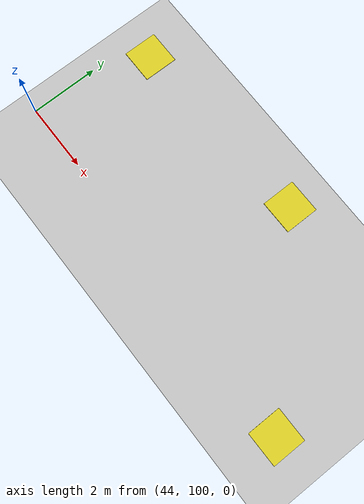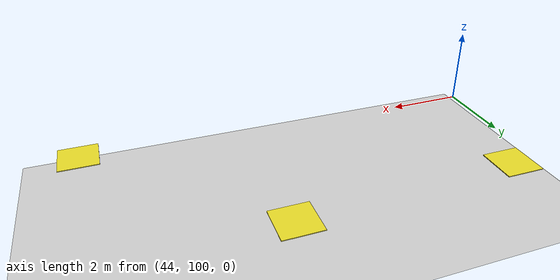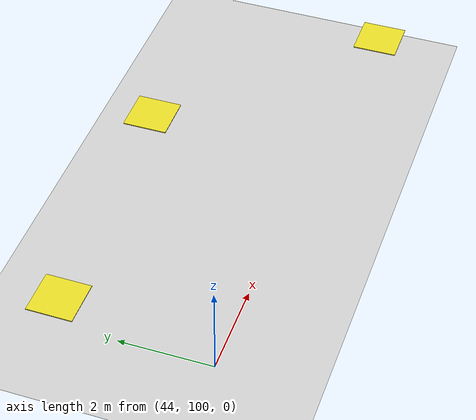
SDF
<sdf version="1.6">
 <world name="default">
  <model name="ground_plane">
   <pose>0 0 -1 0 -0 0</pose>
   <static>1</static>
   <link name="link">
    <collision name="collision">
     <geometry><plane><normal>0 0 1</normal><size>100 100</size></plane></geometry>
     <surface><friction><ode><mu>100</mu><mu2>50</mu2></ode></friction></surface>
    </collision>
    <visual name="visual">
     <cast_shadows>0</cast_shadows>
     <geometry><plane><normal>0 0 1</normal><size>100 100</size></plane></geometry>
     <material>
      <script><uri>file://media/materials/scripts/gazebo.material</uri><name>Gazebo/Grey</name></script>
     </material>
    </visual>
   </link>
  </model>
  <model name="YAC_airport_clone_3">
   <link name="my_box">
    <inertial>
     <mass>1</mass>
     <inertia><ixx>1</ixx><ixy>0</ixy><ixz>0</ixz><iyy>100</iyy><iyz>0</iyz><izz>1</izz></inertia>
    </inertial>
    <visual name="my_box_visual">
     <pose>0 0 1 0 -0 0</pose>
     <geometry><box><size>1 1 0.02</size></box></geometry>
     <material>
      <script><name>Gazebo/Yellow</name><uri>file://media/materials/scripts/gazebo.material</uri></script>
      <ambient>1 1 0 1</ambient>
      <diffuse>1 1 0 1</diffuse>
      <specular>0 0 0 0</specular>
      <emissive>0 0 0 1</emissive>
      <shader type="vertex"><normal_map>__default__</normal_map></shader>
     </material>
    </visual>
    <collision name="my_box_collision">
     <pose>0 0 1 0 -0 0</pose>
     <geometry><box><size>1 1 0.02</size></box></geometry>
     <surface>
      <friction>
       <ode><mu>1</mu><mu2>1</mu2><fdir1>0 0 0</fdir1><slip1>0</slip1><slip2>0</slip2></ode>
       <torsional>
        <coefficient>1</coefficient>
        <patch_radius>0</patch_radius>
        <surface_radius>0</surface_radius>
        <use_patch_radius>1</use_patch_radius>
        <ode><slip>0</slip></ode>
       </torsional>
      </friction>
      <bounce><restitution_coefficient>0</restitution_coefficient><threshold>1e+06</threshold></bounce>
      <contact>
       <collide_without_contact>0</collide_without_contact>
       <collide_without_contact_bitmask>1</collide_without_contact_bitmask>
       <collide_bitmask>1</collide_bitmask>
       <ode>
        <soft_cfm>0</soft_cfm>
        <soft_erp>0.2</soft_erp>
        <kp>1e+13</kp>
        <kd>1</kd>
        <max_vel>0.01</max_vel>
        <min_depth>0</min_depth>
       </ode>
       <bullet>
        <split_impulse>1</split_impulse>
        <split_impulse_penetration_threshold>-0.01</split_impulse_penetration_threshold>
        <soft_cfm>0</soft_cfm>
        <soft_erp>0.2</soft_erp>
        <kp>1e+13</kp>
        <kd>1</kd>
       </bullet>
      </contact>
     </surface>
    </collision>
   </link>
   <static>0</static>
   <pose>44.6624 103.523 -0.990001 -2e-06 -0 -0.004145</pose>
  </model>
  <model name="YAC_airport_clone_4">
   <link name="my_box">
    <inertial>
     <mass>1</mass>
     <inertia><ixx>1</ixx><ixy>0</ixy><ixz>0</ixz><iyy>100</iyy><iyz>0</iyz><izz>1</izz></inertia>
    </inertial>
    <visual name="my_box_visual">
     <pose>0 0 1 0 -0 0</pose>
     <geometry><box><size>1 1 0.02</size></box></geometry>
     <material>
      <script><name>Gazebo/Yellow</name><uri>file://media/materials/scripts/gazebo.material</uri></script>
      <ambient>1 1 0 1</ambient>
      <diffuse>1 1 0 1</diffuse>
      <specular>0 0 0 0</specular>
      <emissive>0 0 0 1</emissive>
      <shader type="vertex"><normal_map>__default__</normal_map></shader>
     </material>
    </visual>
    <collision name="my_box_collision">
     <pose>0 0 1 0 -0 0</pose>
     <geometry><box><size>1 1 0.02</size></box></geometry>
     <surface>
      <friction>
       <ode><mu>1</mu><mu2>1</mu2><fdir1>0 0 0</fdir1><slip1>0</slip1><slip2>0</slip2></ode>
       <torsional>
        <coefficient>1</coefficient>
        <patch_radius>0</patch_radius>
        <surface_radius>0</surface_radius>
        <use_patch_radius>1</use_patch_radius>
        <ode><slip>0</slip></ode>
       </torsional>
      </friction>
      <bounce><restitution_coefficient>0</restitution_coefficient><threshold>1e+06</threshold></bounce>
      <contact>
       <collide_without_contact>0</collide_without_contact>
       <collide_without_contact_bitmask>1</collide_without_contact_bitmask>
       <collide_bitmask>1</collide_bitmask>
       <ode>
        <soft_cfm>0</soft_cfm>
        <soft_erp>0.2</soft_erp>
        <kp>1e+13</kp>
        <kd>1</kd>
        <max_vel>0.01</max_vel>
        <min_depth>0</min_depth>
       </ode>
       <bullet>
        <split_impulse>1</split_impulse>
        <split_impulse_penetration_threshold>-0.01</split_impulse_penetration_threshold>
        <soft_cfm>0</soft_cfm>
        <soft_erp>0.2</soft_erp>
        <kp>1e+13</kp>
        <kd>1</kd>
       </bullet>
      </contact>
     </surface>
    </collision>
   </link>
   <static>0</static>
   <pose>50.4742 103.8 -0.990001 -2e-06 -0 0.004021</pose>
  </model>
  <model name="YAC_airport_clone_4_clone">
   <link name="my_box">
    <inertial>
     <mass>1</mass>
     <inertia><ixx>1</ixx><ixy>0</ixy><ixz>0</ixz><iyy>100</iyy><iyz>0</iyz><izz>1</izz></inertia>
    </inertial>
    <visual name="my_box_visual">
     <pose>0 0 1 0 -0 0</pose>
     <geometry><box><size>1 1 0.02</size></box></geometry>
     <material>
      <script><name>Gazebo/Yellow</name><uri>file://media/materials/scripts/gazebo.material</uri></script>
      <ambient>1 1 0 1</ambient>
      <diffuse>1 1 0 1</diffuse>
      <specular>0 0 0 0</specular>
      <emissive>0 0 0 1</emissive>
      <shader type="vertex"><normal_map>__default__</normal_map></shader>
     </material>
    </visual>
    <collision name="my_box_collision">
     <pose>0 0 1 0 -0 0</pose>
     <geometry><box><size>1 1 0.02</size></box></geometry>
     <surface>
      <friction>
       <ode><mu>1</mu><mu2>1</mu2><fdir1>0 0 0</fdir1><slip1>0</slip1><slip2>0</slip2></ode>
       <torsional>
        <coefficient>1</coefficient>
        <patch_radius>0</patch_radius>
        <surface_radius>0</surface_radius>
        <use_patch_radius>1</use_patch_radius>
        <ode><slip>0</slip></ode>
       </torsional>
      </friction>
      <bounce><restitution_coefficient>0</restitution_coefficient><threshold>1e+06</threshold></bounce>
      <contact>
       <collide_without_contact>0</collide_without_contact>
       <collide_without_contact_bitmask>1</collide_without_contact_bitmask>
       <collide_bitmask>1</collide_bitmask>
       <ode>
        <soft_cfm>0</soft_cfm>
        <soft_erp>0.2</soft_erp>
        <kp>1e+13</kp>
        <kd>1</kd>
        <max_vel>0.01</max_vel>
        <min_depth>0</min_depth>
       </ode>
       <bullet>
        <split_impulse>1</split_impulse>
        <split_impulse_penetration_threshold>-0.01</split_impulse_penetration_threshold>
        <soft_cfm>0</soft_cfm>
        <soft_erp>0.2</soft_erp>
        <kp>1e+13</kp>
        <kd>1</kd>
       </bullet>
      </contact>
     </surface>
    </collision>
   </link>
   <static>0</static>
   <pose>54.8136 99.6897 -0.990001 -2e-06 0 0.005753</pose>
  </model>
 </world>
</sdf>
